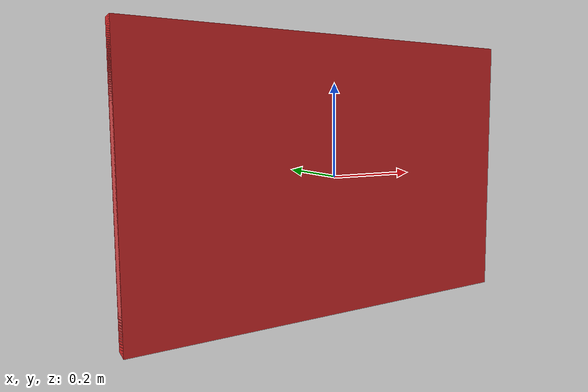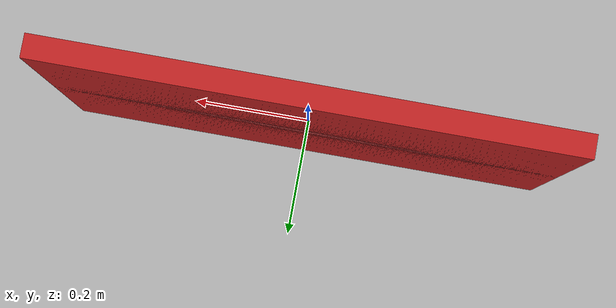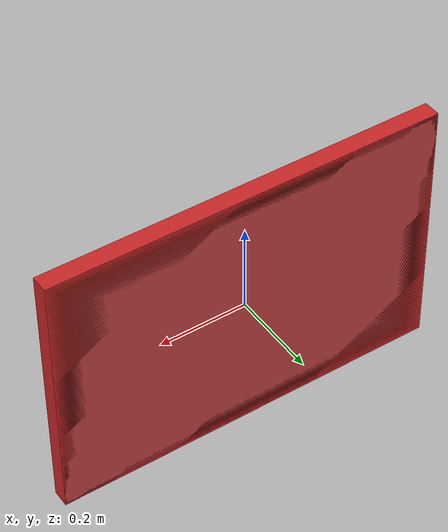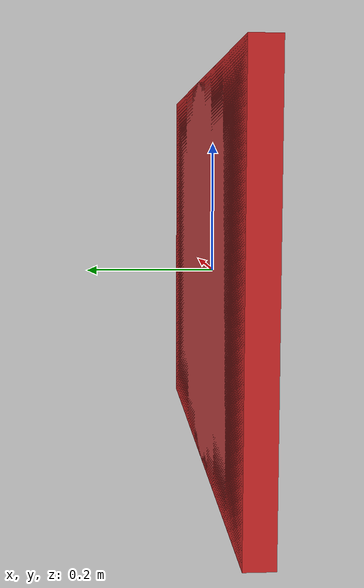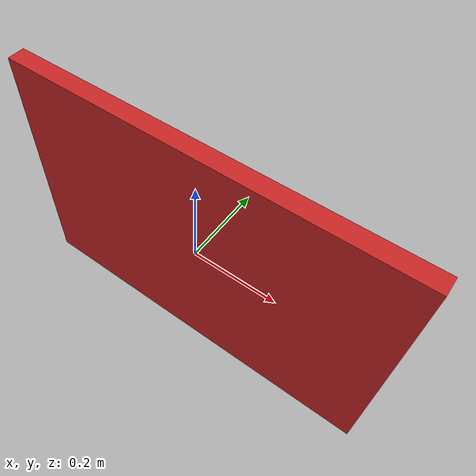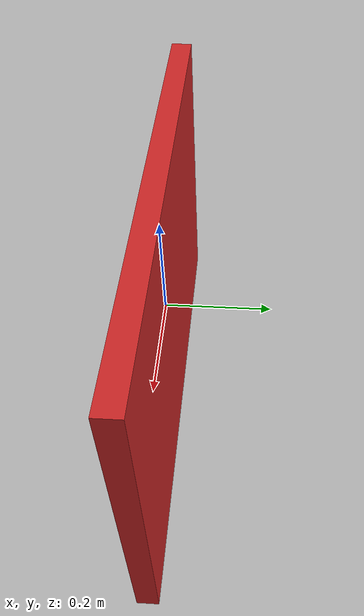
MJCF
<mujoco model="textured_wall">
  <asset>
    <!-- Default texture; object class may overwrite this file path if provided -->
    <texture file="textured_wall_FP_atlas.png" name="tex-textured-wall" type="2d" />
    <material name="textured-wall" reflectance="0.0" shininess="0.0" specular="0.0"
              texrepeat="1 1" texture="tex-textured-wall" texuniform="false" />
    <!-- The OBJ is a unit cube in [-0.5,0.5]^3, so scale sets final dims.
         Target full size: 0.90 x 0.04 x 1.00 (m) => scale="0.9 0.04 1.0" -->
    <mesh file="textured_wall_FP_atlas.obj" name="textured_wall_vis" scale="0.9 0.04 0.60" />
  </asset>
  <worldbody>
    <body>
      <body name="object">
        <!-- Visual mesh (no collisions) -->
        <geom type="mesh" mesh="textured_wall_vis" material="textured-wall" conaffinity="0" contype="0" group="1" />
        <!-- Collision proxy; final half-extents set here to match mesh scale (0.45, 0.02, 0.50) -->
        <geom name="collision" type="box" size="0.45 0.02 0.30" friction="1.0 0.0 0.0" group="0" rgba="0.8 0.8 0.8 0.15" />
      </body>
      <!-- Helper sites; positions chosen to reflect the fixed size above -->
      <site rgba="0 0 0 0" size="0.005" pos="0 0 -0.50" name="bottom_site"/>
      <site rgba="0 0 0 0" size="0.005" pos="0 0 0.50" name="top_site"/>
      <site rgba="0 0 0 0" size="0.005" pos="0.45 0.02 0" name="horizontal_radius_site"/>
    </body>
  </worldbody>
</mujoco>
